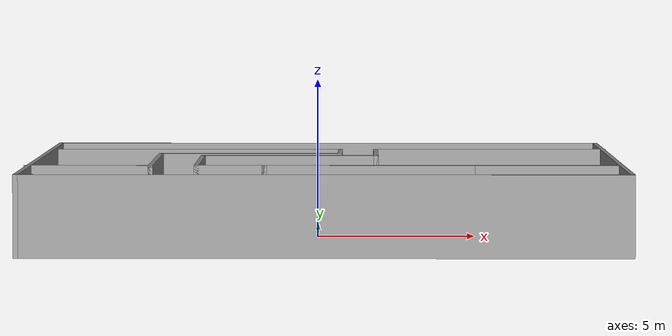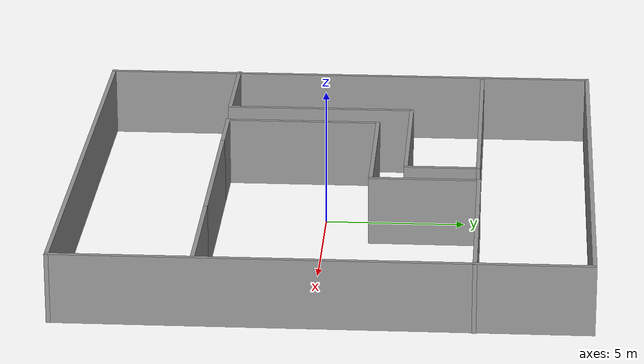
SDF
<?xml version='1.0'?>
<sdf version='1.7'>
  <model name='paper1'>
    <pose>0.240014 0.345865 0 0 -0 0</pose>
    <link name='Wall_10'>
      <collision name='Wall_10_Collision'>
        <geometry>
          <box>
            <size>18.5 0.15 2.5</size>
          </box>
        </geometry>
        <pose>0 0 1.25 0 -0 0</pose>
      </collision>
      <visual name='Wall_10_Visual'>
        <pose>0 0 1.25 0 -0 0</pose>
        <geometry>
          <box>
            <size>18.5 0.15 2.5</size>
          </box>
        </geometry>
        <material>
          <script>
            <uri>file://media/materials/scripts/gazebo.material</uri>
            <name>Gazebo/Grey</name>
          </script>
          <ambient>1 1 1 1</ambient>
        </material>
        <meta>
          <layer>0</layer>
        </meta>
      </visual>
      <pose>0.025058 9.175 0 0 -0 0</pose>
    </link>
    <link name='Wall_11'>
      <collision name='Wall_11_Collision'>
        <geometry>
          <box>
            <size>18.5 0.15 2.5</size>
          </box>
        </geometry>
        <pose>0 0 1.25 0 -0 0</pose>
      </collision>
      <visual name='Wall_11_Visual'>
        <pose>0 0 1.25 0 -0 0</pose>
        <geometry>
          <box>
            <size>18.5 0.15 2.5</size>
          </box>
        </geometry>
        <material>
          <script>
            <uri>file://media/materials/scripts/gazebo.material</uri>
            <name>Gazebo/Grey</name>
          </script>
          <ambient>1 1 1 1</ambient>
        </material>
        <meta>
          <layer>0</layer>
        </meta>
      </visual>
      <pose>9.20006 0 0 0 -0 -1.5708</pose>
    </link>
    <link name='Wall_12'>
      <collision name='Wall_12_Collision'>
        <geometry>
          <box>
            <size>18.5 0.15 2.5</size>
          </box>
        </geometry>
        <pose>0 0 1.25 0 -0 0</pose>
      </collision>
      <visual name='Wall_12_Visual'>
        <pose>0 0 1.25 0 -0 0</pose>
        <geometry>
          <box>
            <size>18.5 0.15 2.5</size>
          </box>
        </geometry>
        <material>
          <script>
            <uri>file://media/materials/scripts/gazebo.material</uri>
            <name>Gazebo/Grey</name>
          </script>
          <ambient>1 1 1 1</ambient>
        </material>
        <meta>
          <layer>0</layer>
        </meta>
      </visual>
      <pose>0.025058 -9.175 0 0 -0 3.14159</pose>
    </link>
    <link name='Wall_14'>
      <collision name='Wall_14_Collision'>
        <geometry>
          <box>
            <size>4 0.15 2.5</size>
          </box>
        </geometry>
        <pose>0 0 1.25 0 -0 0</pose>
      </collision>
      <visual name='Wall_14_Visual'>
        <pose>0 0 1.25 0 -0 0</pose>
        <geometry>
          <box>
            <size>4 0.15 2.5</size>
          </box>
        </geometry>
        <material>
          <script>
            <uri>file://media/materials/scripts/gazebo.material</uri>
            <name>Gazebo/Grey</name>
          </script>
          <ambient>1 1 1 1</ambient>
        </material>
        <meta>
          <layer>0</layer>
        </meta>
      </visual>
      <pose>-7.31053 -4.30069 0 0 -0 0</pose>
    </link>
    <link name='Wall_15'>
      <collision name='Wall_15_Collision'>
        <geometry>
          <box>
            <size>7 0.15 2.5</size>
          </box>
        </geometry>
        <pose>0 0 1.25 0 -0 0</pose>
      </collision>
      <visual name='Wall_15_Visual'>
        <pose>0 0 1.25 0 -0 0</pose>
        <geometry>
          <box>
            <size>7 0.15 2.5</size>
          </box>
        </geometry>
        <material>
          <script>
            <uri>file://media/materials/scripts/gazebo.material</uri>
            <name>Gazebo/Grey</name>
          </script>
          <ambient>1 1 1 1</ambient>
        </material>
        <meta>
          <layer>0</layer>
        </meta>
      </visual>
      <pose>-5.38553 -0.875686 0 0 -0 1.5708</pose>
    </link>
    <link name='Wall_16'>
      <collision name='Wall_16_Collision'>
        <geometry>
          <box>
            <size>6 0.15 2.5</size>
          </box>
        </geometry>
        <pose>0 0 1.25 0 -0 0</pose>
      </collision>
      <visual name='Wall_16_Visual'>
        <pose>0 0 1.25 0 -0 0</pose>
        <geometry>
          <box>
            <size>6 0.15 2.5</size>
          </box>
        </geometry>
        <material>
          <script>
            <uri>file://media/materials/scripts/gazebo.material</uri>
            <name>Gazebo/Grey</name>
          </script>
          <ambient>1 1 1 1</ambient>
        </material>
        <meta>
          <layer>0</layer>
        </meta>
      </visual>
      <pose>-2.46053 2.54931 0 0 -0 0</pose>
    </link>
    <link name='Wall_17'>
      <collision name='Wall_17_Collision'>
        <geometry>
          <box>
            <size>2.75 0.15 2.5</size>
          </box>
        </geometry>
        <pose>0 0 1.25 0 -0 0</pose>
      </collision>
      <visual name='Wall_17_Visual'>
        <pose>0 0 1.25 0 -0 0</pose>
        <geometry>
          <box>
            <size>2.75 0.15 2.5</size>
          </box>
        </geometry>
        <material>
          <script>
            <uri>file://media/materials/scripts/gazebo.material</uri>
            <name>Gazebo/Grey</name>
          </script>
          <ambient>1 1 1 1</ambient>
        </material>
        <meta>
          <layer>0</layer>
        </meta>
      </visual>
      <pose>0.464469 3.84931 0 0 -0 1.5708</pose>
    </link>
    <link name='Wall_18'>
      <collision name='Wall_18_Collision'>
        <geometry>
          <box>
            <size>9.5 0.15 2.5</size>
          </box>
        </geometry>
        <pose>0 0 1.25 0 -0 0</pose>
      </collision>
      <visual name='Wall_18_Visual'>
        <pose>0 0 1.25 0 -0 0</pose>
        <geometry>
          <box>
            <size>9.5 0.15 2.5</size>
          </box>
        </geometry>
        <material>
          <script>
            <uri>file://media/materials/scripts/gazebo.material</uri>
            <name>Gazebo/Grey</name>
          </script>
          <ambient>1 1 1 1</ambient>
        </material>
        <meta>
          <layer>0</layer>
        </meta>
      </visual>
      <pose>-4.21053 5.14931 0 0 -0 3.14159</pose>
    </link>
    <link name='Wall_21'>
      <collision name='Wall_21_Collision'>
        <geometry>
          <box>
            <size>2.25 0.15 2.5</size>
          </box>
        </geometry>
        <pose>0 0 1.25 0 -0 0</pose>
      </collision>
      <visual name='Wall_21_Visual'>
        <pose>0 0 1.25 0 -0 0</pose>
        <geometry>
          <box>
            <size>2.25 0.15 2.5</size>
          </box>
        </geometry>
        <material>
          <script>
            <uri>file://media/materials/scripts/gazebo.material</uri>
            <name>Gazebo/Grey</name>
          </script>
          <ambient>1 1 1 1</ambient>
        </material>
        <meta>
          <layer>0</layer>
        </meta>
      </visual>
      <pose>-2.91447 -4.25659 0 0 -0 0</pose>
    </link>
    <link name='Wall_23'>
      <collision name='Wall_23_Collision'>
        <geometry>
          <box>
            <size>6.75 0.15 2.5</size>
          </box>
        </geometry>
        <pose>0 0 1.25 0 -0 0</pose>
      </collision>
      <visual name='Wall_23_Visual'>
        <pose>0 0 1.25 0 -0 0</pose>
        <geometry>
          <box>
            <size>6.75 0.15 2.5</size>
          </box>
        </geometry>
        <material>
          <script>
            <uri>file://media/materials/scripts/gazebo.material</uri>
            <name>Gazebo/Grey</name>
          </script>
          <ambient>1 1 1 1</ambient>
        </material>
        <meta>
          <layer>0</layer>
        </meta>
      </visual>
      <pose>1.43553 -4.25659 0 0 -0 0</pose>
    </link>
    <link name='Wall_25'>
      <collision name='Wall_25_Collision'>
        <geometry>
          <box>
            <size>5.75 0.15 2.5</size>
          </box>
        </geometry>
        <pose>0 0 1.25 0 -0 0</pose>
      </collision>
      <visual name='Wall_25_Visual'>
        <pose>0 0 1.25 0 -0 0</pose>
        <geometry>
          <box>
            <size>5.75 0.15 2.5</size>
          </box>
        </geometry>
        <material>
          <script>
            <uri>file://media/materials/scripts/gazebo.material</uri>
            <name>Gazebo/Grey</name>
          </script>
          <ambient>1 1 1 1</ambient>
        </material>
        <meta>
          <layer>0</layer>
        </meta>
      </visual>
      <pose>-3.96447 -1.45659 0 0 -0 1.5708</pose>
    </link>
    <link name='Wall_26'>
      <collision name='Wall_26_Collision'>
        <geometry>
          <box>
            <size>5.75 0.15 2.5</size>
          </box>
        </geometry>
        <pose>0 0 1.25 0 -0 0</pose>
      </collision>
      <visual name='Wall_26_Visual'>
        <pose>0 0 1.25 0 -0 0</pose>
        <geometry>
          <box>
            <size>5.75 0.15 2.5</size>
          </box>
        </geometry>
        <material>
          <script>
            <uri>file://media/materials/scripts/gazebo.material</uri>
            <name>Gazebo/Grey</name>
          </script>
          <ambient>1 1 1 1</ambient>
        </material>
        <meta>
          <layer>0</layer>
        </meta>
      </visual>
      <pose>-1.16447 1.34341 0 0 -0 0</pose>
    </link>
    <link name='Wall_29'>
      <collision name='Wall_29_Collision'>
        <geometry>
          <box>
            <size>4 0.15 2.5</size>
          </box>
        </geometry>
        <pose>0 0 1.25 0 -0 0</pose>
      </collision>
      <visual name='Wall_29_Visual'>
        <pose>0 0 1.25 0 -0 0</pose>
        <geometry>
          <box>
            <size>4 0.15 2.5</size>
          </box>
        </geometry>
        <material>
          <script>
            <uri>file://media/materials/scripts/gazebo.material</uri>
            <name>Gazebo/Grey</name>
          </script>
          <ambient>1 1 1 1</ambient>
        </material>
        <meta>
          <layer>0</layer>
        </meta>
      </visual>
      <pose>1.63553 3.26841 0 0 -0 1.5708</pose>
    </link>
    <link name='Wall_30'>
      <collision name='Wall_30_Collision'>
        <geometry>
          <box>
            <size>7.75 0.15 2.5</size>
          </box>
        </geometry>
        <pose>0 0 1.25 0 -0 0</pose>
      </collision>
      <visual name='Wall_30_Visual'>
        <pose>0 0 1.25 0 -0 0</pose>
        <geometry>
          <box>
            <size>7.75 0.15 2.5</size>
          </box>
        </geometry>
        <material>
          <script>
            <uri>file://media/materials/scripts/gazebo.material</uri>
            <name>Gazebo/Grey</name>
          </script>
          <ambient>1 1 1 1</ambient>
        </material>
        <meta>
          <layer>0</layer>
        </meta>
      </visual>
      <pose>5.43553 5.19341 0 0 -0 0</pose>
    </link>
    <link name='Wall_32'>
      <collision name='Wall_32_Collision'>
        <geometry>
          <box>
            <size>4.5 0.15 2.5</size>
          </box>
        </geometry>
        <pose>0 0 1.25 0 -0 0</pose>
      </collision>
      <visual name='Wall_32_Visual'>
        <pose>0 0 1.25 0 -0 0</pose>
        <geometry>
          <box>
            <size>4.5 0.15 2.5</size>
          </box>
        </geometry>
        <material>
          <script>
            <uri>file://media/materials/scripts/gazebo.material</uri>
            <name>Gazebo/Grey</name>
          </script>
          <ambient>1 1 1 1</ambient>
        </material>
        <meta>
          <layer>0</layer>
        </meta>
      </visual>
      <pose>6.91053 -4.25659 0 0 -0 0</pose>
    </link>
    <link name='Wall_9'>
      <collision name='Wall_9_Collision'>
        <geometry>
          <box>
            <size>18.5 0.15 2.5</size>
          </box>
        </geometry>
        <pose>0 0 1.25 0 -0 0</pose>
      </collision>
      <visual name='Wall_9_Visual'>
        <pose>0 0 1.25 0 -0 0</pose>
        <geometry>
          <box>
            <size>18.5 0.15 2.5</size>
          </box>
        </geometry>
        <material>
          <script>
            <uri>file://media/materials/scripts/gazebo.material</uri>
            <name>Gazebo/Grey</name>
          </script>
          <ambient>1 1 1 1</ambient>
        </material>
        <meta>
          <layer>0</layer>
        </meta>
      </visual>
      <pose>-9.14994 0 0 0 -0 1.5708</pose>
    </link>
    <static>1</static>
  </model>
</sdf>
